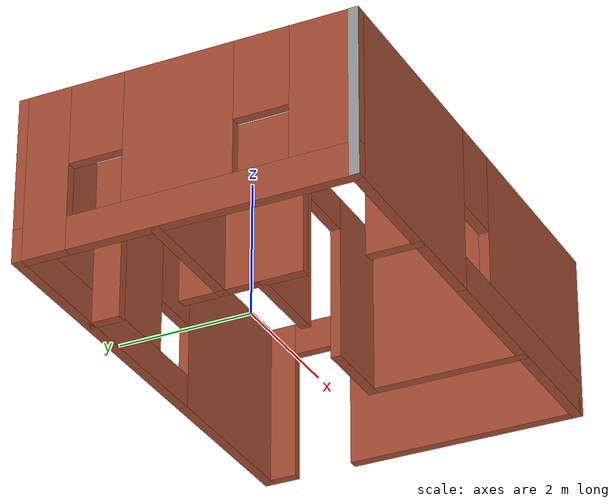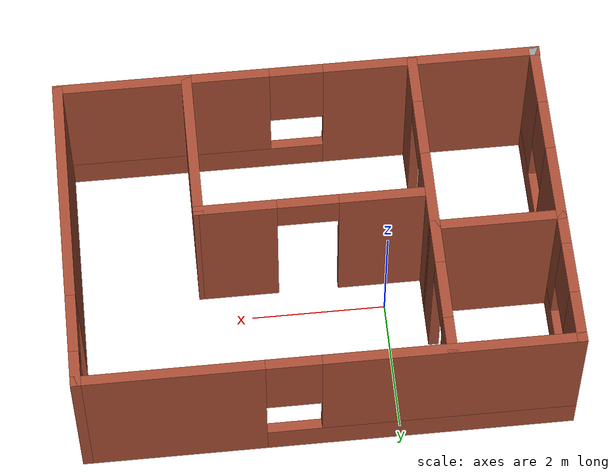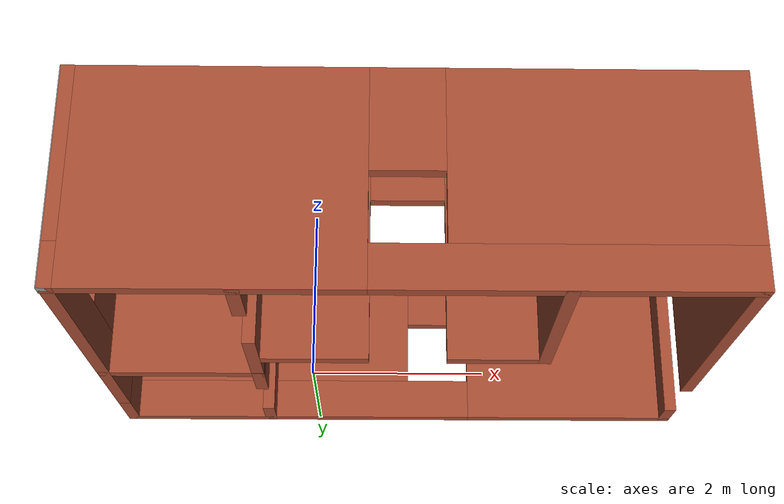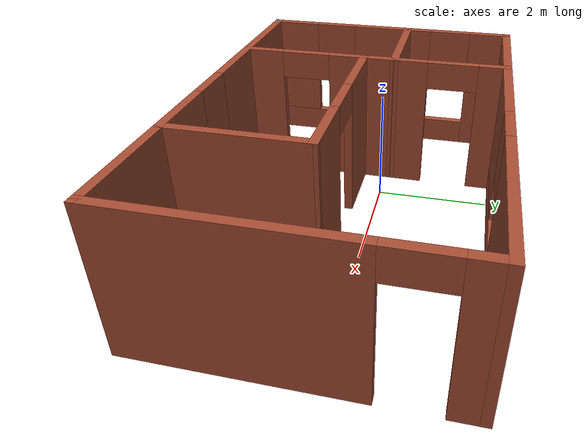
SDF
<?xml version='1.0'?>
<sdf version='1.7'>
  <model name='flat03'>
    <pose>1.055 -0.325 0 0 -0 0</pose>
    <link name='Wall_0'>
      <collision name='Wall_0_Collision'>
        <geometry>
          <box>
            <size>0.16 0.15 2.5</size>
          </box>
        </geometry>
        <pose>0 0 1.25 0 -0 0</pose>
      </collision>
      <visual name='Wall_0_Visual'>
        <pose>0 0 1.25 0 -0 0</pose>
        <geometry>
          <box>
            <size>0.16 0.15 2.5</size>
          </box>
        </geometry>
        <material>
          <script>
            <uri>file://media/materials/scripts/gazebo.material</uri>
            <name>Gazebo/Grey</name>
          </script>
          <ambient>1 1 1 1</ambient>
        </material>
        <meta>
          <layer>0</layer>
        </meta>
      </visual>
      <pose>-3.55 -2.425 0 0 -0 0</pose>
    </link>
    <link name='Wall_1'>
      <pose>0.005 -2.425 0 0 -0 0</pose>
      <visual name='Wall_1_Visual_0'>
        <pose>-2.00678 0 1.25 0 -0 0</pose>
        <geometry>
          <box>
            <size>3.23644 0.15 2.5</size>
          </box>
        </geometry>
        <material>
          <script>
            <uri>file://media/materials/scripts/gazebo.material</uri>
            <name>Gazebo/Bricks</name>
          </script>
          <ambient>0.435294 0.796078 0.67451 1</ambient>
        </material>
        <meta>
          <layer>0</layer>
        </meta>
      </visual>
      <collision name='Wall_1_Collision_0'>
        <geometry>
          <box>
            <size>3.23644 0.15 2.5</size>
          </box>
        </geometry>
        <pose>-2.00678 0 1.25 0 -0 0</pose>
      </collision>
      <visual name='Wall_1_Visual_1'>
        <pose>1.61822 0 0.25 0 -0 0</pose>
        <geometry>
          <box>
            <size>4.01356 0.15 0.5</size>
          </box>
        </geometry>
        <material>
          <script>
            <uri>file://media/materials/scripts/gazebo.material</uri>
            <name>Gazebo/Bricks</name>
          </script>
          <ambient>0.435294 0.796078 0.67451 1</ambient>
        </material>
        <meta>
          <layer>0</layer>
        </meta>
      </visual>
      <collision name='Wall_1_Collision_1'>
        <geometry>
          <box>
            <size>4.01356 0.15 0.5</size>
          </box>
        </geometry>
        <pose>1.61822 0 0.25 0 -0 0</pose>
      </collision>
      <visual name='Wall_1_Visual_2'>
        <pose>2.01822 0 1.5 0 -0 0</pose>
        <geometry>
          <box>
            <size>3.21356 0.15 2</size>
          </box>
        </geometry>
        <material>
          <script>
            <uri>file://media/materials/scripts/gazebo.material</uri>
            <name>Gazebo/Bricks</name>
          </script>
          <ambient>0.435294 0.796078 0.67451 1</ambient>
        </material>
        <meta>
          <layer>0</layer>
        </meta>
      </visual>
      <collision name='Wall_1_Collision_2'>
        <geometry>
          <box>
            <size>3.21356 0.15 2</size>
          </box>
        </geometry>
        <pose>2.01822 0 1.5 0 -0 0</pose>
      </collision>
      <visual name='Wall_1_Visual_3'>
        <pose>0.011439 0 1.9 0 -0 0</pose>
        <geometry>
          <box>
            <size>0.8 0.15 1.2</size>
          </box>
        </geometry>
        <material>
          <script>
            <uri>file://media/materials/scripts/gazebo.material</uri>
            <name>Gazebo/Bricks</name>
          </script>
          <ambient>0.435294 0.796078 0.67451 1</ambient>
        </material>
        <meta>
          <layer>0</layer>
        </meta>
      </visual>
      <collision name='Wall_1_Collision_3'>
        <geometry>
          <box>
            <size>0.8 0.15 1.2</size>
          </box>
        </geometry>
        <pose>0.011439 0 1.9 0 -0 0</pose>
      </collision>
    </link>
    <link name='Wall_14'>
      <pose>-1.71527 -0.992815 0 0 -0 -1.572</pose>
      <visual name='Wall_14_Visual_0'>
        <pose>-0.836885 0 1.25 0 -0 0</pose>
        <geometry>
          <box>
            <size>1.29625 0.15 2.5</size>
          </box>
        </geometry>
        <material>
          <script>
            <uri>file://media/materials/scripts/gazebo.material</uri>
            <name>Gazebo/Bricks</name>
          </script>
          <ambient>1 1 1 1</ambient>
        </material>
        <meta>
          <layer>0</layer>
        </meta>
      </visual>
      <collision name='Wall_14_Collision_0'>
        <geometry>
          <box>
            <size>1.29625 0.15 2.5</size>
          </box>
        </geometry>
        <pose>-0.836885 0 1.25 0 -0 0</pose>
      </collision>
      <visual name='Wall_14_Visual_1'>
        <pose>1.09812 0 1.25 0 -0 0</pose>
        <geometry>
          <box>
            <size>0.77377 0.15 2.5</size>
          </box>
        </geometry>
        <material>
          <script>
            <uri>file://media/materials/scripts/gazebo.material</uri>
            <name>Gazebo/Bricks</name>
          </script>
          <ambient>1 1 1 1</ambient>
        </material>
        <meta>
          <layer>0</layer>
        </meta>
      </visual>
      <collision name='Wall_14_Collision_1'>
        <geometry>
          <box>
            <size>0.77377 0.15 2.5</size>
          </box>
        </geometry>
        <pose>1.09812 0 1.25 0 -0 0</pose>
      </collision>
      <visual name='Wall_14_Visual_2'>
        <pose>0.261239 0 2.25 0 -0 0</pose>
        <geometry>
          <box>
            <size>0.9 0.15 0.5</size>
          </box>
        </geometry>
        <material>
          <script>
            <uri>file://media/materials/scripts/gazebo.material</uri>
            <name>Gazebo/Bricks</name>
          </script>
          <ambient>1 1 1 1</ambient>
        </material>
        <meta>
          <layer>0</layer>
        </meta>
      </visual>
      <collision name='Wall_14_Collision_2'>
        <geometry>
          <box>
            <size>0.9 0.15 0.5</size>
          </box>
        </geometry>
        <pose>0.261239 0 2.25 0 -0 0</pose>
      </collision>
    </link>
    <link name='Wall_16'>
      <pose>-0.027331 -0.154217 0 0 -0 0</pose>
      <visual name='Wall_16_Visual_0'>
        <pose>-1.05556 0 1.25 0 -0 0</pose>
        <geometry>
          <box>
            <size>1.38888 0.15 2.5</size>
          </box>
        </geometry>
        <material>
          <script>
            <uri>file://media/materials/scripts/gazebo.material</uri>
            <name>Gazebo/Bricks</name>
          </script>
          <ambient>1 0.764706 0.305882 1</ambient>
        </material>
        <meta>
          <layer>0</layer>
        </meta>
      </visual>
      <collision name='Wall_16_Collision_0'>
        <geometry>
          <box>
            <size>1.38888 0.15 2.5</size>
          </box>
        </geometry>
        <pose>-1.05556 0 1.25 0 -0 0</pose>
      </collision>
      <visual name='Wall_16_Visual_1'>
        <pose>1.14444 0 1.25 0 -0 0</pose>
        <geometry>
          <box>
            <size>1.21112 0.15 2.5</size>
          </box>
        </geometry>
        <material>
          <script>
            <uri>file://media/materials/scripts/gazebo.material</uri>
            <name>Gazebo/Bricks</name>
          </script>
          <ambient>1 0.764706 0.305882 1</ambient>
        </material>
        <meta>
          <layer>0</layer>
        </meta>
      </visual>
      <collision name='Wall_16_Collision_1'>
        <geometry>
          <box>
            <size>1.21112 0.15 2.5</size>
          </box>
        </geometry>
        <pose>1.14444 0 1.25 0 -0 0</pose>
      </collision>
      <visual name='Wall_16_Visual_2'>
        <pose>0.088882 0 2.25 0 -0 0</pose>
        <geometry>
          <box>
            <size>0.9 0.15 0.5</size>
          </box>
        </geometry>
        <material>
          <script>
            <uri>file://media/materials/scripts/gazebo.material</uri>
            <name>Gazebo/Bricks</name>
          </script>
          <ambient>1 0.764706 0.305882 1</ambient>
        </material>
        <meta>
          <layer>0</layer>
        </meta>
      </visual>
      <collision name='Wall_16_Collision_2'>
        <geometry>
          <box>
            <size>0.9 0.15 0.5</size>
          </box>
        </geometry>
        <pose>0.088882 0 2.25 0 -0 0</pose>
      </collision>
    </link>
    <link name='Wall_17'>
      <collision name='Wall_17_Collision'>
        <geometry>
          <box>
            <size>2.40353 0.15 2.5</size>
          </box>
        </geometry>
        <pose>0 0 1.25 0 -0 0</pose>
      </collision>
      <visual name='Wall_17_Visual'>
        <pose>0 0 1.25 0 -0 0</pose>
        <geometry>
          <box>
            <size>2.40353 0.15 2.5</size>
          </box>
        </geometry>
        <material>
          <script>
            <uri>file://media/materials/scripts/gazebo.material</uri>
            <name>Gazebo/Bricks</name>
          </script>
          <ambient>1 0 0.498039 1</ambient>
        </material>
        <meta>
          <layer>0</layer>
        </meta>
      </visual>
      <pose>1.64817 -1.28098 0 0 -0 -1.57035</pose>
    </link>
    <link name='Wall_2'>
      <pose>3.555 0 0 0 -0 1.5708</pose>
      <visual name='Wall_2_Visual_0'>
        <pose>-0.723704 0 1.25 0 -0 0</pose>
        <geometry>
          <box>
            <size>3.55259 0.15 2.5</size>
          </box>
        </geometry>
        <material>
          <script>
            <uri>file://media/materials/scripts/gazebo.material</uri>
            <name>Gazebo/Bricks</name>
          </script>
          <ambient>0.435294 0.796078 0.67451 1</ambient>
        </material>
        <meta>
          <layer>0</layer>
        </meta>
      </visual>
      <collision name='Wall_2_Collision_0'>
        <geometry>
          <box>
            <size>3.55259 0.15 2.5</size>
          </box>
        </geometry>
        <pose>-0.723704 0 1.25 0 -0 0</pose>
      </collision>
      <visual name='Wall_2_Visual_1'>
        <pose>2.2263 0 1.25 0 -0 0</pose>
        <geometry>
          <box>
            <size>0.547408 0.15 2.5</size>
          </box>
        </geometry>
        <material>
          <script>
            <uri>file://media/materials/scripts/gazebo.material</uri>
            <name>Gazebo/Bricks</name>
          </script>
          <ambient>0.435294 0.796078 0.67451 1</ambient>
        </material>
        <meta>
          <layer>0</layer>
        </meta>
      </visual>
      <collision name='Wall_2_Collision_1'>
        <geometry>
          <box>
            <size>0.547408 0.15 2.5</size>
          </box>
        </geometry>
        <pose>2.2263 0 1.25 0 -0 0</pose>
      </collision>
      <visual name='Wall_2_Visual_2'>
        <pose>1.50259 0 2.25 0 -0 0</pose>
        <geometry>
          <box>
            <size>0.9 0.15 0.5</size>
          </box>
        </geometry>
        <material>
          <script>
            <uri>file://media/materials/scripts/gazebo.material</uri>
            <name>Gazebo/Bricks</name>
          </script>
          <ambient>0.435294 0.796078 0.67451 1</ambient>
        </material>
        <meta>
          <layer>0</layer>
        </meta>
      </visual>
      <collision name='Wall_2_Collision_2'>
        <geometry>
          <box>
            <size>0.9 0.15 0.5</size>
          </box>
        </geometry>
        <pose>1.50259 0 2.25 0 -0 0</pose>
      </collision>
    </link>
    <link name='Wall_3'>
      <pose>0.005 2.425 0 0 -0 3.14159</pose>
      <visual name='Wall_3_Visual_0'>
        <pose>-2.26634 0 1.25 0 -0 0</pose>
        <geometry>
          <box>
            <size>2.71732 0.15 2.5</size>
          </box>
        </geometry>
        <material>
          <script>
            <uri>file://media/materials/scripts/gazebo.material</uri>
            <name>Gazebo/Bricks</name>
          </script>
          <ambient>1 0.764706 0.305882 1</ambient>
        </material>
        <meta>
          <layer>0</layer>
        </meta>
      </visual>
      <collision name='Wall_3_Collision_0'>
        <geometry>
          <box>
            <size>2.71732 0.15 2.5</size>
          </box>
        </geometry>
        <pose>-2.26634 0 1.25 0 -0 0</pose>
      </collision>
      <visual name='Wall_3_Visual_1'>
        <pose>1.35866 0 0.25 0 -0 0</pose>
        <geometry>
          <box>
            <size>4.53268 0.15 0.5</size>
          </box>
        </geometry>
        <material>
          <script>
            <uri>file://media/materials/scripts/gazebo.material</uri>
            <name>Gazebo/Bricks</name>
          </script>
          <ambient>1 0.764706 0.305882 1</ambient>
        </material>
        <meta>
          <layer>0</layer>
        </meta>
      </visual>
      <collision name='Wall_3_Collision_1'>
        <geometry>
          <box>
            <size>4.53268 0.15 0.5</size>
          </box>
        </geometry>
        <pose>1.35866 0 0.25 0 -0 0</pose>
      </collision>
      <visual name='Wall_3_Visual_2'>
        <pose>1.75866 0 1.5 0 -0 0</pose>
        <geometry>
          <box>
            <size>3.73268 0.15 2</size>
          </box>
        </geometry>
        <material>
          <script>
            <uri>file://media/materials/scripts/gazebo.material</uri>
            <name>Gazebo/Bricks</name>
          </script>
          <ambient>1 0.764706 0.305882 1</ambient>
        </material>
        <meta>
          <layer>0</layer>
        </meta>
      </visual>
      <collision name='Wall_3_Collision_2'>
        <geometry>
          <box>
            <size>3.73268 0.15 2</size>
          </box>
        </geometry>
        <pose>1.75866 0 1.5 0 -0 0</pose>
      </collision>
      <visual name='Wall_3_Visual_3'>
        <pose>-0.507676 0 1.9 0 -0 0</pose>
        <geometry>
          <box>
            <size>0.8 0.15 1.2</size>
          </box>
        </geometry>
        <material>
          <script>
            <uri>file://media/materials/scripts/gazebo.material</uri>
            <name>Gazebo/Bricks</name>
          </script>
          <ambient>1 0.764706 0.305882 1</ambient>
        </material>
        <meta>
          <layer>0</layer>
        </meta>
      </visual>
      <collision name='Wall_3_Collision_3'>
        <geometry>
          <box>
            <size>0.8 0.15 1.2</size>
          </box>
        </geometry>
        <pose>-0.507676 0 1.9 0 -0 0</pose>
      </collision>
    </link>
    <link name='Wall_4'>
      <pose>-3.545 0 0 0 -0 -1.5708</pose>
      <visual name='Wall_4_Visual_0'>
        <pose>-2.09979 0 1.25 0 -0 0</pose>
        <geometry>
          <box>
            <size>0.800414 0.15 2.5</size>
          </box>
        </geometry>
        <material>
          <script>
            <uri>file://media/materials/scripts/gazebo.material</uri>
            <name>Gazebo/Bricks</name>
          </script>
          <ambient>1 0 0.498039 1</ambient>
        </material>
        <meta>
          <layer>0</layer>
        </meta>
      </visual>
      <collision name='Wall_4_Collision_0'>
        <geometry>
          <box>
            <size>0.800414 0.15 2.5</size>
          </box>
        </geometry>
        <pose>-2.09979 0 1.25 0 -0 0</pose>
      </collision>
      <visual name='Wall_4_Visual_1'>
        <pose>0.400207 0 0.25 0 -0 0</pose>
        <geometry>
          <box>
            <size>4.19959 0.15 0.5</size>
          </box>
        </geometry>
        <material>
          <script>
            <uri>file://media/materials/scripts/gazebo.material</uri>
            <name>Gazebo/Bricks</name>
          </script>
          <ambient>1 0 0.498039 1</ambient>
        </material>
        <meta>
          <layer>0</layer>
        </meta>
      </visual>
      <collision name='Wall_4_Collision_1'>
        <geometry>
          <box>
            <size>4.19959 0.15 0.5</size>
          </box>
        </geometry>
        <pose>0.400207 0 0.25 0 -0 0</pose>
      </collision>
      <visual name='Wall_4_Visual_2'>
        <pose>-0.092828 0 1.5 0 -0 0</pose>
        <geometry>
          <box>
            <size>1.61352 0.15 2</size>
          </box>
        </geometry>
        <material>
          <script>
            <uri>file://media/materials/scripts/gazebo.material</uri>
            <name>Gazebo/Bricks</name>
          </script>
          <ambient>1 0 0.498039 1</ambient>
        </material>
        <meta>
          <layer>0</layer>
        </meta>
      </visual>
      <collision name='Wall_4_Collision_2'>
        <geometry>
          <box>
            <size>1.61352 0.15 2</size>
          </box>
        </geometry>
        <pose>-0.092828 0 1.5 0 -0 0</pose>
      </collision>
      <visual name='Wall_4_Visual_3'>
        <pose>2.00697 0 1.5 0 -0 0</pose>
        <geometry>
          <box>
            <size>0.986071 0.15 2</size>
          </box>
        </geometry>
        <material>
          <script>
            <uri>file://media/materials/scripts/gazebo.material</uri>
            <name>Gazebo/Bricks</name>
          </script>
          <ambient>1 0 0.498039 1</ambient>
        </material>
        <meta>
          <layer>0</layer>
        </meta>
      </visual>
      <collision name='Wall_4_Collision_3'>
        <geometry>
          <box>
            <size>0.986071 0.15 2</size>
          </box>
        </geometry>
        <pose>2.00697 0 1.5 0 -0 0</pose>
      </collision>
      <visual name='Wall_4_Visual_4'>
        <pose>-1.29959 0 1.9 0 -0 0</pose>
        <geometry>
          <box>
            <size>0.8 0.15 1.2</size>
          </box>
        </geometry>
        <material>
          <script>
            <uri>file://media/materials/scripts/gazebo.material</uri>
            <name>Gazebo/Bricks</name>
          </script>
          <ambient>1 0 0.498039 1</ambient>
        </material>
        <meta>
          <layer>0</layer>
        </meta>
      </visual>
      <collision name='Wall_4_Collision_4'>
        <geometry>
          <box>
            <size>0.8 0.15 1.2</size>
          </box>
        </geometry>
        <pose>-1.29959 0 1.9 0 -0 0</pose>
      </collision>
      <visual name='Wall_4_Visual_5'>
        <pose>1.11393 0 1.9 0 -0 0</pose>
        <geometry>
          <box>
            <size>0.8 0.15 1.2</size>
          </box>
        </geometry>
        <material>
          <script>
            <uri>file://media/materials/scripts/gazebo.material</uri>
            <name>Gazebo/Bricks</name>
          </script>
          <ambient>1 0 0.498039 1</ambient>
        </material>
        <meta>
          <layer>0</layer>
        </meta>
      </visual>
      <collision name='Wall_4_Collision_5'>
        <geometry>
          <box>
            <size>0.8 0.15 1.2</size>
          </box>
        </geometry>
        <pose>1.11393 0 1.9 0 -0 0</pose>
      </collision>
    </link>
    <link name='Wall_6'>
      <collision name='Wall_6_Collision'>
        <geometry>
          <box>
            <size>1.97088 0.15 2.5</size>
          </box>
        </geometry>
        <pose>0 0 1.25 0 -0 0</pose>
      </collision>
      <visual name='Wall_6_Visual'>
        <pose>0 0 1.25 0 -0 0</pose>
        <geometry>
          <box>
            <size>1.97088 0.15 2.5</size>
          </box>
        </geometry>
        <material>
          <script>
            <uri>file://media/materials/scripts/gazebo.material</uri>
            <name>Gazebo/Bricks</name>
          </script>
          <ambient>1 1 1 1</ambient>
        </material>
        <meta>
          <layer>0</layer>
        </meta>
      </visual>
      <pose>-2.62401 0.417132 0 0 -0 6.8e-05</pose>
    </link>
    <link name='Wall_7'>
      <pose>-1.71475 1.41146 0 0 -0 1.57197</pose>
      <visual name='Wall_7_Visual_0'>
        <pose>-0.72529 0 1.25 0 -0 0</pose>
        <geometry>
          <box>
            <size>0.687956 0.15 2.5</size>
          </box>
        </geometry>
        <material>
          <script>
            <uri>file://media/materials/scripts/gazebo.material</uri>
            <name>Gazebo/Bricks</name>
          </script>
          <ambient>1 1 1 1</ambient>
        </material>
        <meta>
          <layer>0</layer>
        </meta>
      </visual>
      <collision name='Wall_7_Collision_0'>
        <geometry>
          <box>
            <size>0.687956 0.15 2.5</size>
          </box>
        </geometry>
        <pose>-0.72529 0 1.25 0 -0 0</pose>
      </collision>
      <visual name='Wall_7_Visual_1'>
        <pose>0.793978 0 1.25 0 -0 0</pose>
        <geometry>
          <box>
            <size>0.55058 0.15 2.5</size>
          </box>
        </geometry>
        <material>
          <script>
            <uri>file://media/materials/scripts/gazebo.material</uri>
            <name>Gazebo/Bricks</name>
          </script>
          <ambient>1 1 1 1</ambient>
        </material>
        <meta>
          <layer>0</layer>
        </meta>
      </visual>
      <collision name='Wall_7_Collision_1'>
        <geometry>
          <box>
            <size>0.55058 0.15 2.5</size>
          </box>
        </geometry>
        <pose>0.793978 0 1.25 0 -0 0</pose>
      </collision>
      <visual name='Wall_7_Visual_2'>
        <pose>0.068688 0 2.25 0 -0 0</pose>
        <geometry>
          <box>
            <size>0.9 0.15 0.5</size>
          </box>
        </geometry>
        <material>
          <script>
            <uri>file://media/materials/scripts/gazebo.material</uri>
            <name>Gazebo/Bricks</name>
          </script>
          <ambient>1 1 1 1</ambient>
        </material>
        <meta>
          <layer>0</layer>
        </meta>
      </visual>
      <collision name='Wall_7_Collision_2'>
        <geometry>
          <box>
            <size>0.9 0.15 0.5</size>
          </box>
        </geometry>
        <pose>0.068688 0 2.25 0 -0 0</pose>
      </collision>
    </link>
    <static>1</static>
  </model>
</sdf>
